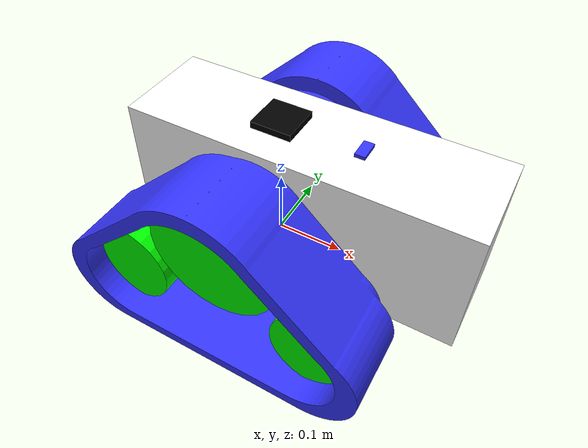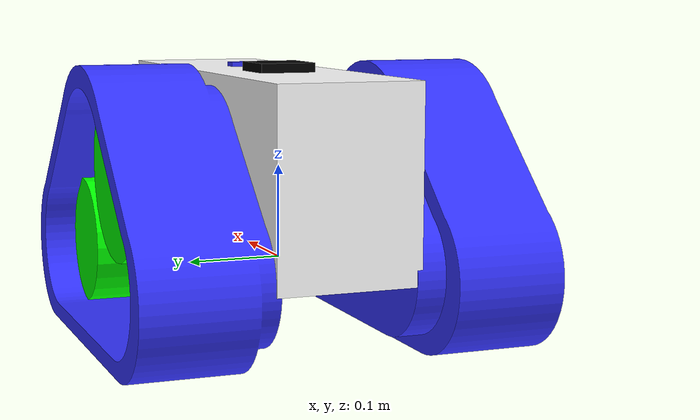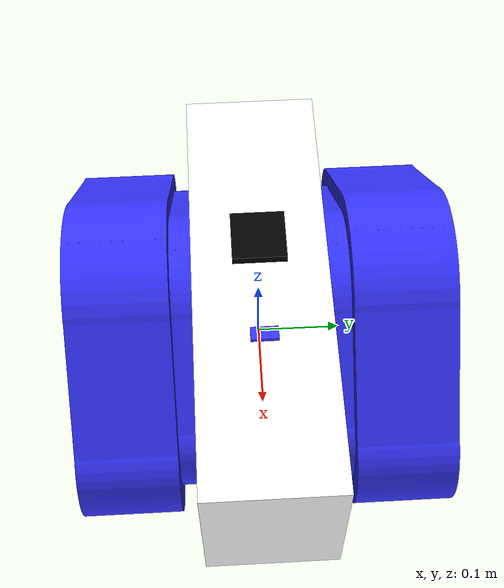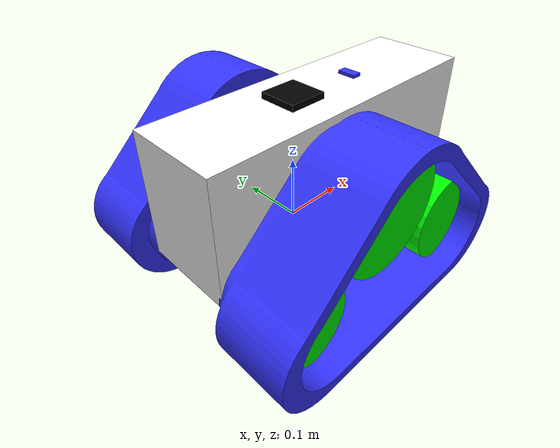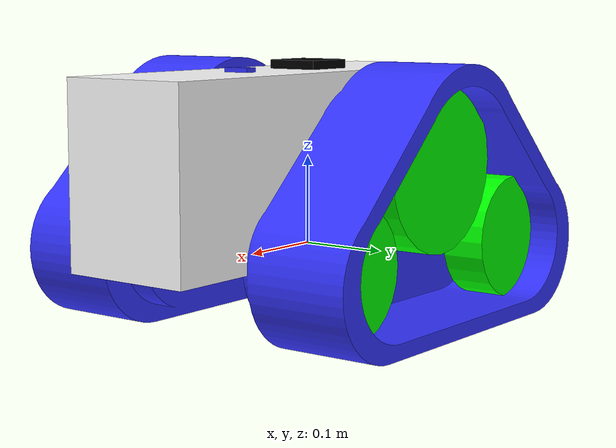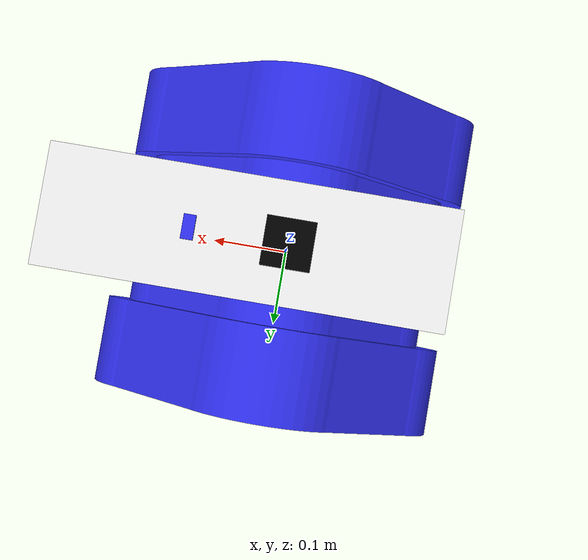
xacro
<?xml version="1.0"?>

<robot xmlns:xacro="http://www.ros.org/wiki/xacro" name="microtractor">
    <xacro:include filename="colours.xacro"/>
    <xacro:include filename="track.xacro"/>
    <xacro:include filename="microtractor_core.xacro"/>
    <xacro:include filename="microtractor.ros2_control.xacro"/>
</robot>

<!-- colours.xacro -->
<robot xmlns:xacro="http://www.ros.org/wiki/xacro">
    <material name="black">
        <color rgba="0.0 0.0 0.0 1.0"/>
    </material>

    <material name="white">
        <color rgba="1.0 1.0 1.0 1.0"/>
    </material>

    <material name="blue">
        <color rgba="0.2 0.2 1 1"/>
    </material>

    <material name="green">
        <color rgba="0.0 1.0 0.0 1.0"/>
    </material>

</robot>

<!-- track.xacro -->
<robot xmlns:xacro="http://www.ros.org/wiki/xacro">

    <xacro:property name="attack_pinion_radius" value="0.095" />
    <xacro:property name="attack_pinion_center" value="0.18" />
    <xacro:property name="auxiliar_pinion_radius" value="0.07" />
    <xacro:property name="pinion_width" value="0.05" />
    <xacro:property name="auxiliar_pinion_center" value="0.085" />

    <xacro:property name="track_hight" value="0.3" />
    <xacro:property name="track_lenght" value="0.45" />
    <xacro:property name="track_width" value="0.145"/>

    <xacro:property name="right" value="1.0" />
    <xacro:property name="left" value="-1.0" />

    <xacro:macro name="pinion" params="name preffix side x y radius pinion_center">

        <joint name="${preffix}_${name}_joint" type="fixed">
            <origin xyz="${x} ${y * side} ${pinion_center}" rpy="${-side * pi/2} 0.0 0.0"/>
            <parent link="${preffix}_track_link"/>
            <child link="${preffix}_${name}_link"/>
            <axis xyz="0.0 0.0 1.0"/>
        </joint>

        <link name="${preffix}_${name}_link">
            <visual>
                <geometry>
                    <cylinder radius="${radius}" length="${pinion_width}"/>
                </geometry>
                <material name="green"/>
            </visual>
        </link>
    </xacro:macro>

    <xacro:macro name="triangular_track" params="preffix side x y z">

        <!-- Link de la oruga -->

        <joint name="${preffix}_track_joint" type="fixed">
            <origin xyz="${x} ${y} ${z}"/>
            <parent link="base_link"/>
            <child link="${preffix}_track_link"/>
            <axis xyz="0.0 0.0 ${-side}"/>
        </joint>

        <link name="${preffix}_track_link">
            <visual>
                <origin xyz="0.0 0.0 0.0" rpy="0.0 0.0 -${pi * ((1+side)/2)}"/> <!--Si el side es left, el resultado será 0, por lo que no girará-->
                <geometry>
                    <mesh filename="package://microtractor/meshes/track.stl" scale="0.01 0.01 0.01"/>
                </geometry>
                <material name="blue"/>
            </visual>
        </link>

        <xacro:pinion name="attack_pinion" preffix="${preffix}" side="${side}" x="0.0" y="0.0" radius="${attack_pinion_radius}" pinion_center="${attack_pinion_center}"/>
        <xacro:pinion name="auxiliar_pinion_back" preffix="${preffix}"  side="${side}" x="${-(track_lenght/2 - auxiliar_pinion_radius)}"  y="0.0" radius="${auxiliar_pinion_radius}" pinion_center="${auxiliar_pinion_center}"/>
        <xacro:pinion name="auxiliar_pinion_front" preffix="${preffix}" side="${side}" x="${track_lenght/2 - auxiliar_pinion_radius}"  y="0.0" radius="${auxiliar_pinion_radius}" pinion_center="${auxiliar_pinion_center}"/>
    </xacro:macro>

</robot>

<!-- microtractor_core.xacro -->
<robot xmlns:xacro="http://www.ros.org/wiki/xacro">

    <xacro:property name="microtractor_width" value="0.15"/>
    <xacro:property name="microtractor_heigh" value="0.2"/>
    <xacro:property name="microtractor_length" value="0.5"/>

    <link name="base_link"/>

    <joint name="chassis_joint" type="fixed">
        <origin xyz="-0.2 0.0 0.0"/>
        <parent link="base_link"/>
        <child link="chassis_link"/>
    </joint>

    <link name="chassis_link">
        <visual>
        <origin xyz="${microtractor_length/2} 0.0 ${microtractor_heigh/2}"/>
        <!--origin xyz="0.0 0.0 0.0"/-->
            <geometry>
                <box size="${microtractor_length} ${microtractor_width} ${microtractor_heigh}"/>
            </geometry>
            <material name="white"/>
        </visual>
    </link>

    <joint name="imu_joint" type="fixed">
        <origin xyz="${microtractor_width - 0.03} 0.0 ${microtractor_heigh}" rpy="0.0 0.0 0.0"/>
        <parent link="base_link"/>
        <child link="imu_link"/>
    </joint>

    <link name="imu_link">
        <visual>
            <geometry>
                <box size="0.015 0.03 0.01"/>
            </geometry>
            <material name="blue"/>
        </visual>
    </link>

    <joint name="gps_joint" type="fixed">
        <origin xyz="0.0 0.0 ${microtractor_heigh}"/>
        <parent link="base_link"/>
        <child link="gps_link"/>
    </joint>

    <link name="gps_link">
        <visual>
            <geometry>
                <box size="0.06 0.06 0.02"/>
            </geometry>
            <material name="black"/>
        </visual>
    </link>

    <xacro:triangular_track preffix="right" x="0.0" y="${track_width+0.01}" z="-${attack_pinion_center-microtractor_heigh/2}" side="${right}"/>
    <xacro:triangular_track preffix="left" x="0.0" y="-${track_width+0.01}" z="-${attack_pinion_center-microtractor_heigh/2}" side="${left}"/>
</robot>
